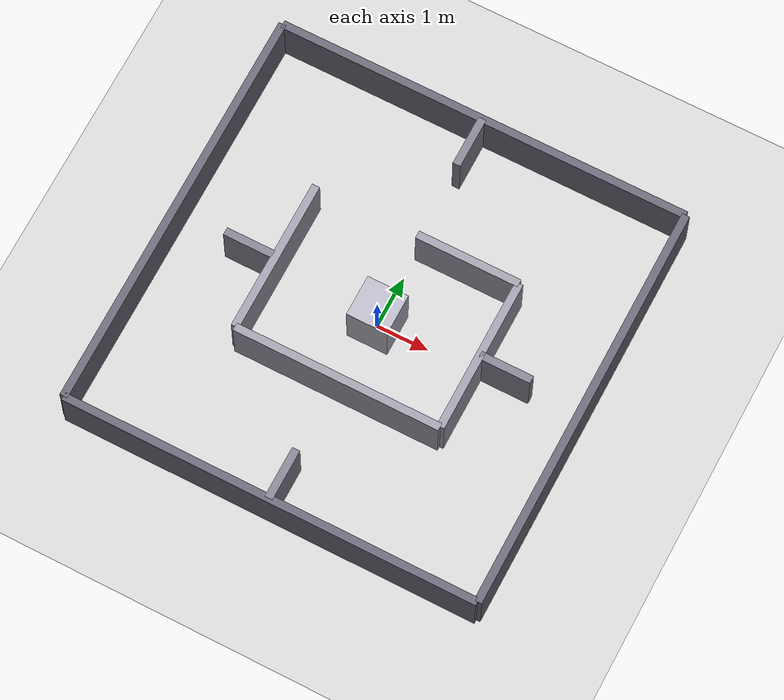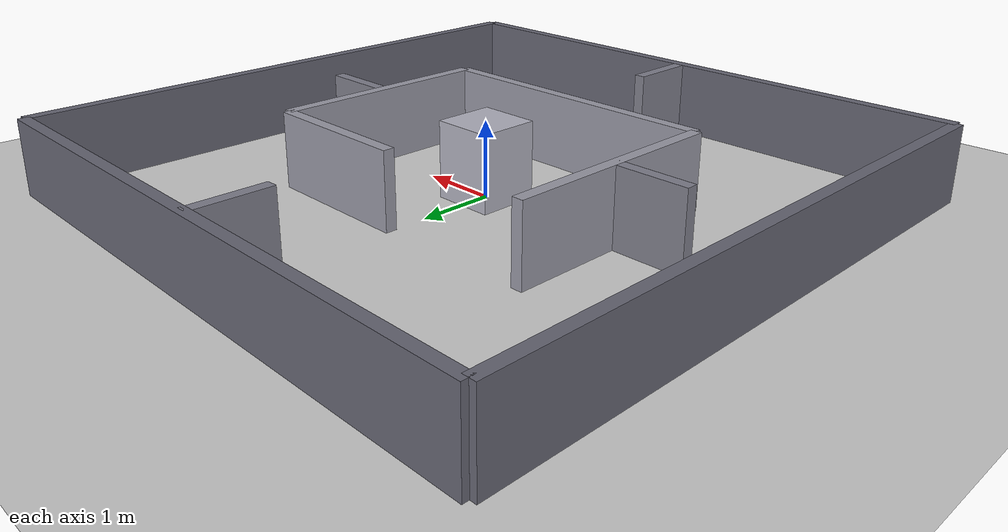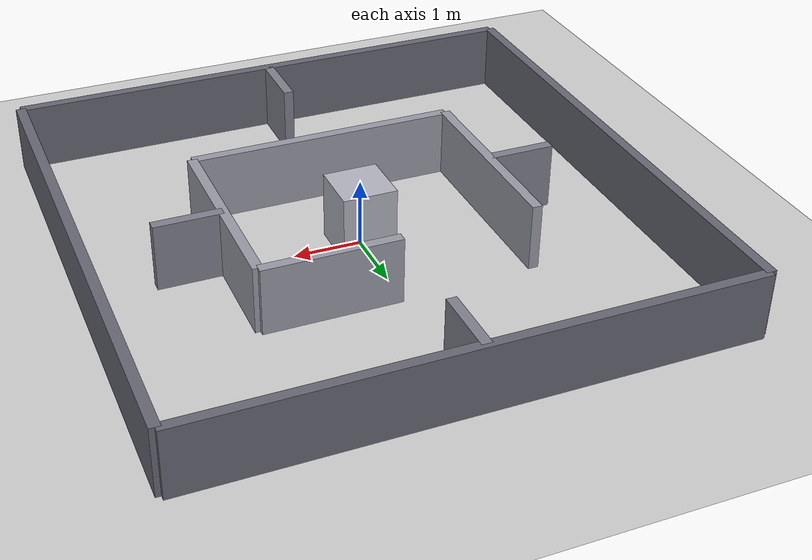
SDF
<?xml version="1.0"?>
<sdf version="1.8">
  <world name="maze06_world">
    <physics type="ode">
      <real_time_update_rate>1000.0</real_time_update_rate>
      <max_step_size>0.001</max_step_size>
      <real_time_factor>1</real_time_factor>
      <ode>
        <solver>
          <type>quick</type>
          <iters>150</iters>
          <precon_iters>0</precon_iters>
          <sor>1.400000</sor>
          <use_dynamic_moi_rescaling>1</use_dynamic_moi_rescaling>
        </solver>
        <constraints>
          <cfm>0.00001</cfm>
          <erp>0.2</erp>
          <contact_max_correcting_vel>2000.000000</contact_max_correcting_vel>
          <contact_surface_layer>0.01000</contact_surface_layer>
        </constraints>
      </ode>
    </physics>
    <plugin
      filename="gz-sim-physics-system"
      name="gz::sim::systems::Physics">
    </plugin>
    <plugin
      filename="gz-sim-user-commands-system"
      name="gz::sim::systems::UserCommands">
    </plugin>
    <plugin
      filename="gz-sim-scene-broadcaster-system"
      name="gz::sim::systems::SceneBroadcaster">
    </plugin>
    <plugin
      filename="gz-sim-sensors-system"
      name="gz::sim::systems::Sensors">
      <render_engine>ogre2</render_engine>
    </plugin>
    <plugin
      filename="gz-sim-imu-system"
      name="gz::sim::systems::Imu">
    </plugin>

    <include>
      <uri>https://fuel.gazebosim.org/1.0/OpenRobotics/models/Ground Plane</uri>
    </include>

    <include>
      <uri>https://fuel.gazebosim.org/1.0/OpenRobotics/models/Sun</uri>
    </include>

    <!-- ===== MAZE 06: FLOATING ROOM MAZE ===== -->
    <!-- Arena: width=8 (x from -4..4), height=8 (y from -4..4) -->
    <!-- Walls: thickness=0.15, height=1.0 (z) -->

    <!-- ===== OUTER BOUNDARY ===== -->
    <!-- Top wall -->
    <model name="outer_top" static="true">
      <pose>0 4 0.5 0 0 0</pose>
      <link name="link">
        <collision name="col"><geometry><box><size>8 0.15 1.0</size></box></geometry></collision>
        <visual name="vis"><geometry><box><size>8 0.15 1.0</size></box></geometry>
          <material><ambient>0.4 0.4 0.45 1</ambient></material></visual>
      </link>
    </model>

    <!-- Bottom wall -->
    <model name="outer_bottom" static="true">
      <pose>0 -4 0.5 0 0 0</pose>
      <link name="link">
        <collision name="col"><geometry><box><size>8 0.15 1.0</size></box></geometry></collision>
        <visual name="vis"><geometry><box><size>8 0.15 1.0</size></box></geometry>
          <material><ambient>0.4 0.4 0.45 1</ambient></material></visual>
      </link>
    </model>

    <!-- Left wall -->
    <model name="outer_left" static="true">
      <pose>-4 0 0.5 0 0 0</pose>
      <link name="link">
        <collision name="col"><geometry><box><size>0.15 8 1.0</size></box></geometry></collision>
        <visual name="vis"><geometry><box><size>0.15 8 1.0</size></box></geometry>
          <material><ambient>0.4 0.4 0.45 1</ambient></material></visual>
      </link>
    </model>

    <!-- Right wall -->
    <model name="outer_right" static="true">
      <pose>4 0 0.5 0 0 0</pose>
      <link name="link">
        <collision name="col"><geometry><box><size>0.15 8 1.0</size></box></geometry></collision>
        <visual name="vis"><geometry><box><size>0.15 8 1.0</size></box></geometry>
          <material><ambient>0.4 0.4 0.45 1</ambient></material></visual>
      </link>
    </model>

    <!-- ===== FLOATING CENTRAL ROOM ===== -->
    <!-- Floating room - top wall -->
    <model name="float_room_top" static="true">
      <pose>1 1.5 0.5 0 0 0</pose>
      <link name="link">
        <collision name="col"><geometry><box><size>2 0.15 1.0</size></box></geometry></collision>
        <visual name="vis"><geometry><box><size>2 0.15 1.0</size></box></geometry>
          <material><ambient>0.6 0.6 0.65 1</ambient></material></visual>
      </link>
    </model>

    <!-- Floating room - bottom wall -->
    <model name="float_room_bottom" static="true">
      <pose>0 -1.5 0.5 0 0 0</pose>
      <link name="link">
        <collision name="col"><geometry><box><size>4 0.15 1.0</size></box></geometry></collision>
        <visual name="vis"><geometry><box><size>4 0.15 1.0</size></box></geometry>
          <material><ambient>0.6 0.6 0.65 1</ambient></material></visual>
      </link>
    </model>

    <!-- Floating room - left wall -->
    <model name="float_room_left" static="true">
      <pose>-2 0 0.5 0 0 0</pose>
      <link name="link">
        <collision name="col"><geometry><box><size>0.15 3 1.0</size></box></geometry></collision>
        <visual name="vis"><geometry><box><size>0.15 3 1.0</size></box></geometry>
          <material><ambient>0.6 0.6 0.65 1</ambient></material></visual>
      </link>
    </model>

    <!-- Floating room - right wall -->
    <model name="float_room_right" static="true">
      <pose>2 0 0.5 0 0 0</pose>
      <link name="link">
        <collision name="col"><geometry><box><size>0.15 3 1.0</size></box></geometry></collision>
        <visual name="vis"><geometry><box><size>0.15 3 1.0</size></box></geometry>
          <material><ambient>0.6 0.6 0.65 1</ambient></material></visual>
      </link>
    </model>

    <!-- ===== INWARD-POINTING WALLS FROM OUTER BOUNDARY ===== -->
    <!-- Top inward wall -->
    <model name="inward_top" static="true">
      <pose>0 3.5 0.5 0 0 0</pose>
      <link name="link">
        <collision name="col"><geometry><box><size>0.15 1 1.0</size></box></geometry></collision>
        <visual name="vis"><geometry><box><size>0.15 1 1.0</size></box></geometry>
          <material><ambient>0.5 0.5 0.55 1</ambient></material></visual>
      </link>
    </model>

    <!-- Bottom inward wall -->
    <model name="inward_bottom" static="true">
      <pose>0 -3.5 0.5 0 0 0</pose>
      <link name="link">
        <collision name="col"><geometry><box><size>0.15 1 1.0</size></box></geometry></collision>
        <visual name="vis"><geometry><box><size>0.15 1 1.0</size></box></geometry>
          <material><ambient>0.5 0.5 0.55 1</ambient></material></visual>
      </link>
    </model>

    <!-- Left inward wall -->
    <model name="inward_left" static="true">
      <pose>-2.5 0 0.5 0 0 0</pose>
      <link name="link">
        <collision name="col"><geometry><box><size>1 0.15 1.0</size></box></geometry></collision>
        <visual name="vis"><geometry><box><size>1 0.15 1.0</size></box></geometry>
          <material><ambient>0.5 0.5 0.55 1</ambient></material></visual>
      </link>
    </model>

    <!-- Right inward wall -->
    <model name="inward_right" static="true">
      <pose>2.5 0 0.5 0 0 0</pose>
      <link name="link">
        <collision name="col"><geometry><box><size>1 0.15 1.0</size></box></geometry></collision>
        <visual name="vis"><geometry><box><size>1 0.15 1.0</size></box></geometry>
          <material><ambient>0.5 0.5 0.55 1</ambient></material></visual>
      </link>
    </model>

    <!-- ===== OBSTACLE INSIDE FLOATING ROOM ===== -->
    <!-- Central obstacle in floating room -->
    <model name="room_obstacle" static="true">
      <pose>0 0 0.5 0 0 0</pose>
      <link name="link">
        <collision name="col"><geometry><box><size>0.8 0.8 1.0</size></box></geometry></collision>
        <visual name="vis"><geometry><box><size>0.8 0.8 1.0</size></box></geometry>
          <material><ambient>0.7 0.7 0.75 1</ambient></material></visual>
      </link>
    </model>

    <gui fullscreen='0'>
      <camera name='user_camera'>
        <pose frame=''>0 0 12 0 1.57 0</pose>
        <view_controller>orbit</view_controller>
        <projection_type>perspective</projection_type>
      </camera>
    </gui>
  </world>
</sdf>
